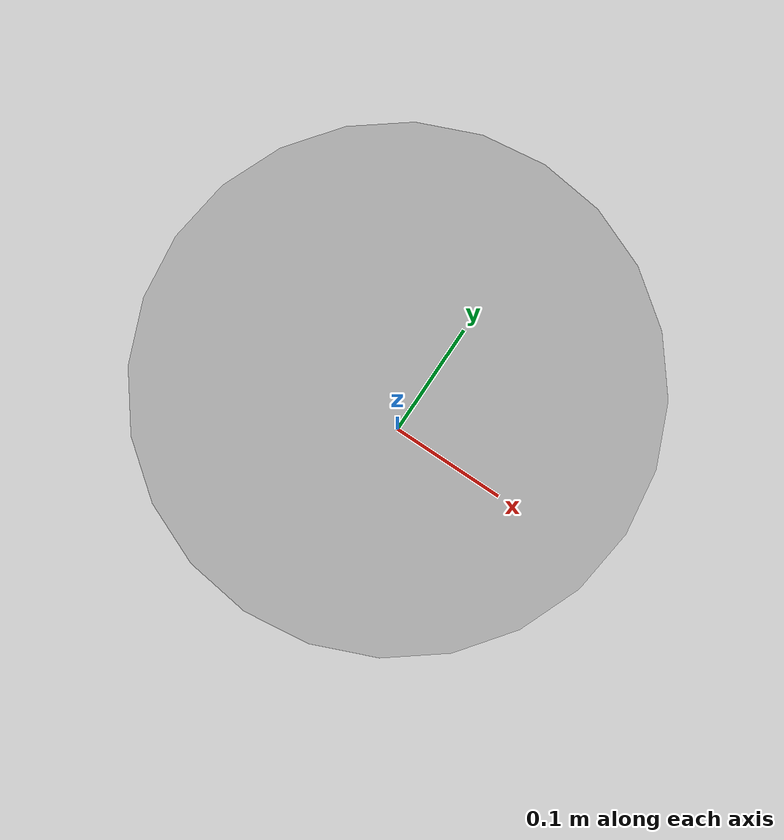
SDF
<?xml version="1.0"?>
<sdf version="1.6">
  <model name="rgo2019/trashbin_small">
    <link name="1_link">
      <collision name="1_col">
        <geometry>
          <cylinder>
            <length>0.295</length>
            <radius>0.1575</radius>
          </cylinder>
        </geometry>
      </collision>
      <visual name="1_vis">
        <geometry>
          <cylinder>
            <length>0.295</length>
            <radius>0.1575</radius>
          </cylinder>
        </geometry>
      </visual>
      <pose>0 0 0.1475 0 0 0</pose>
    </link>
    <link name="on_top_of">
      <virtual_volume name="on_top_of_vv">
        <geometry>
          <cylinder>
            <length>0.25</length>
            <radius>0.15</radius>
          </cylinder>
        </geometry>
      </virtual_volume>
      <pose>0 0 0.435 0 0 0</pose>
    </link>
    <link name="in_front_of">
      <virtual_volume name="in_front_of_vv">
        <geometry>
          <box>
            <size>0.05 0.05 0.01</size>
          </box>
        </geometry>
      </virtual_volume>
      <pose>0.6 0 0 0 0 0</pose>
    </link>
    <static>true</static>
  </model>
</sdf>
